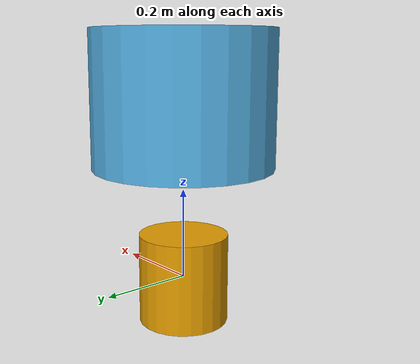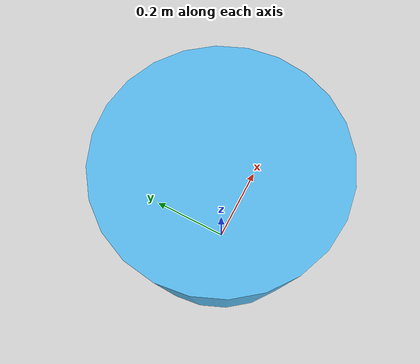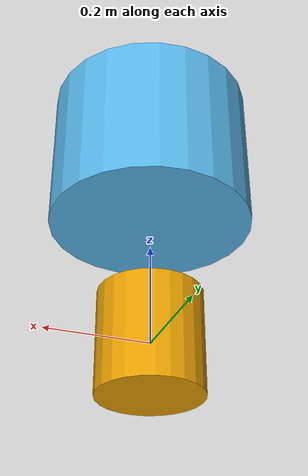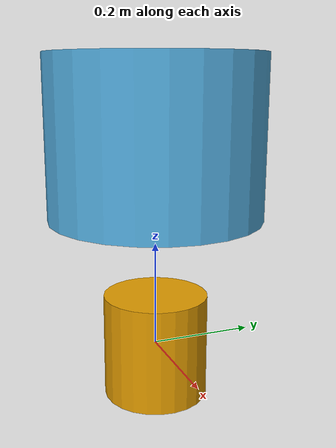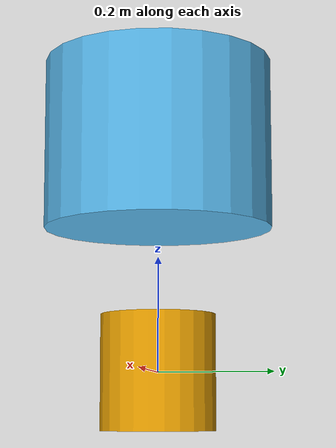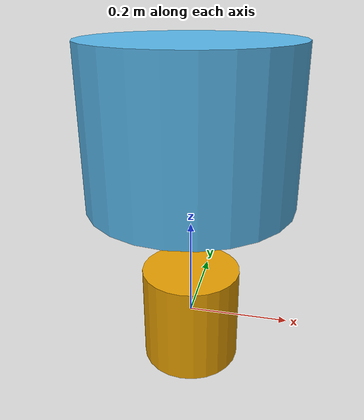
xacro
<robot name="chained" xmlns:xacro="http://www.ros.org/wiki/xacro">
  <xacro:include filename="$(find me495_urdf)/chain_link.urdf.xacro" />
  <xacro:property name="length" value="0.2" /><!-- The length of the first link-->

  <link name="base_link">
    <xacro:cylinder radius="0.1" length="${length}" />
  </link>

  <link name="link1">
    <xacro:cylinder radius="0.2" length="0.3" />
  </link>

  <joint name="j01" type="continuous">
    <origin xyz="0 0 ${2.0*length}"/>
    <parent link="base_link" />
    <child link="link1" />
  </joint>

</robot>

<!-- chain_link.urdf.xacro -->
<robot xmlns:xacro="http://www.ros.org/wiki/xacro">

  <xacro:macro name="cylinder" params="radius length">
    <visual>
      <geometry>
        <cylinder length="${length}" radius="${radius}" />
      </geometry>
    </visual>
    <collision>
      <geometry>
        <cylinder length="${length}" radius="${radius}" />
      </geometry>
    </collision>
    <intertial>
      <mass value="1"/>
      <intertia ixx="${radius**2/2.0}" iyy="${(length**2 + 3.0*radius**2)/12.0}" izz="${(length**2 + 3.0*radius**2)/12.0}" ixy="0.0" ixz="0.0" iyz="0.0" />
    </intertial>
  </xacro:macro>
</robot>
